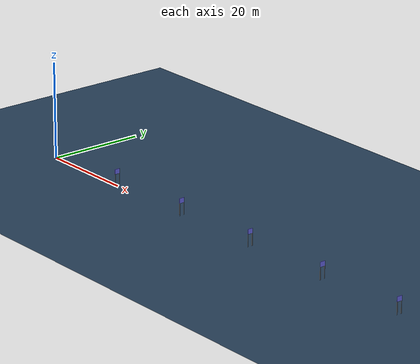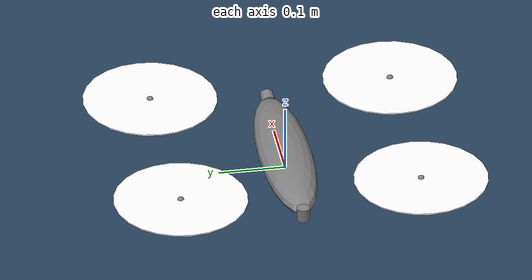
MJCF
<mujoco model="Skydio X2 scene">
  <include file="x2.xml"/>

  <statistic center="0 0 0.1" extent="0.6" meansize=".05"/>

  <visual>
    <headlight diffuse="0.6 0.6 0.6" ambient="0.3 0.3 0.3" specular="0 0 0"/>
    <rgba haze="0.15 0.25 0.35 1"/>
    <global azimuth="-20" elevation="-20" ellipsoidinertia="true"/>
  </visual>

  <asset>
    <texture type="skybox" builtin="gradient" rgb1="0.3 0.5 0.7" rgb2="0 0 0" width="512" height="3072"/>
    <texture type="2d" name="groundplane" builtin="checker" mark="edge" rgb1="0.2 0.3 0.4" rgb2="0.1 0.2 0.3"
      markrgb="0.8 0.8 0.8" width="300" height="300"/>
    <material name="groundplane" texture="groundplane" texuniform="true" texrepeat="5 5" reflectance="0.2"/>
  </asset>

  <worldbody>
    <light pos="0 0 1.5" dir="0 0 -1" directional="true"/>
    <geom name="floor" size="0 0 0.05" type="plane" material="groundplane"/>

     <body name="archa1" pos="20 0 0" euler="0 0 90">-->
      <geom type="box" size="0.05 0.05 1.25" pos="-0.5 0 1.25" rgba="0.6 0.6 0.6 1"/>
      <geom type="box" size="0.05 0.05 1.25" pos="0.5 0 1.25" rgba="0.6 0.6 0.6 1"/>
      <geom type="box" size="0.55 0.05 0.5" pos="0 0 3" rgba="0.4 0.4 0.9 1"/>
    </body>

    <body name="archa2" pos="40 0 0" euler="0 0 90">-->
      <geom type="box" size="0.05 0.05 1.25" pos="-0.5 0 1.25" rgba="0.6 0.6 0.6 1"/>
      <geom type="box" size="0.05 0.05 1.25" pos="0.5 0 1.25" rgba="0.6 0.6 0.6 1"/>
      <geom type="box" size="0.55 0.05 0.5" pos="0 0 3" rgba="0.4 0.4 0.9 1"/>
    </body>

    <body name="archa3" pos="60 0 0" euler="0 0 90">-->
      <geom type="box" size="0.05 0.05 1.25" pos="-0.5 0 1.25" rgba="0.6 0.6 0.6 1"/>
      <geom type="box" size="0.05 0.05 1.25" pos="0.5 0 1.25" rgba="0.6 0.6 0.6 1"/>
      <geom type="box" size="0.55 0.05 0.5" pos="0 0 3" rgba="0.4 0.4 0.9 1"/>
    </body>

    <body name="archa4" pos="80 0 0" euler="0 0 90">-->
      <geom type="box" size="0.05 0.05 1.25" pos="-0.5 0 1.25" rgba="0.6 0.6 0.6 1"/>
      <geom type="box" size="0.05 0.05 1.25" pos="0.5 0 1.25" rgba="0.6 0.6 0.6 1"/>
      <geom type="box" size="0.55 0.05 0.5" pos="0 0 3" rgba="0.4 0.4 0.9 1"/>
    </body>

    <body name="archa5" pos="100 0 0" euler="0 0 90">-->
      <geom type="box" size="0.05 0.05 1.25" pos="-0.5 0 1.25" rgba="0.6 0.6 0.6 1"/>
      <geom type="box" size="0.05 0.05 1.25" pos="0.5 0 1.25" rgba="0.6 0.6 0.6 1"/>
      <geom type="box" size="0.55 0.05 0.5" pos="0 0 3" rgba="0.4 0.4 0.9 1"/>
    </body>

  </worldbody>
</mujoco>

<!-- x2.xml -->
<mujoco model="Skydio X2">
  <compiler autolimits="true" assetdir="assets"/>

  <option timestep="0.01" density="1.225" viscosity="1.8e-5"/>

  <default>
    <default class="x2">
      <geom mass="0"/>
      <motor ctrlrange="-13 13"/>
      <mesh scale="0.01 0.01 0.01"/>
      <default class="visual">
        <geom group="2" type="mesh" contype="0" conaffinity="0"/>
      </default>
      <default class="collision">
        <geom group="3" type="box"/>
        <default class="rotor">
          <geom type="ellipsoid" size=".13 .13 .1" rgba="0.8 0.1 0.1 1"/>
        </default>
      </default>
      <site group="5"/>
    </default>
  </default>

  <asset>
    <material name="invisible" rgba="0 0 0 0"/>
  </asset>

  <worldbody>
    <light name="spotlight" mode="targetbodycom" target="x2" pos="0 -1 0"/>
    <body name="x2" pos="0 0 0">
      <freejoint/>
      <camera name="track" pos="-1 0 .5" xyaxes="0 -1 0 1 0 2" mode="trackcom"/>
      <site name="imu" pos="0 0 .02"/>
      <geom class="collision" size=".06 .027 .02" pos=".04 0 .02" mass="0"/>
      <geom class="collision" size=".06 .027 .02" pos=".04 0 .06" mass="0"/>
      <geom class="collision" size=".05 .027 .02" pos="-.07 0 .065" mass="0"/>
      <geom class="collision" size=".023 .017 .01" pos="-.137 .008 .065" quat="1 0 0 1" mass="0"/>
      <geom name="rotor1" class="rotor" pos="-.14 -.18 .08" mass=".25"/>
      <geom name="rotor2" class="rotor" pos="-.14 .18 .08" mass=".25"/>
      <geom name="rotor3" class="rotor" pos=".14 .18 .08" mass=".25"/>
      <geom name="rotor4" class="rotor" pos=".14 -.18 .08" mass=".25"/>
      <geom size=".16 .04 .02" pos="0 0 0.02" type="ellipsoid" mass="0.325" class="visual"/>
      <site name="straight_lidar_site" pos=".16 .0 .02" size="0.01 0.01" type="cylinder" euler="0 85 0"/>
      <site name="upper_lidar_site" pos="-.16 .0 .02" size="0.01 0.01" type="cylinder" euler="0 0 0"/>
      <site name="thrust1" pos="-.14 -.18 .05"/>
      <geom type="cylinder" size="0.1 0.001" rgba="1 1 1 1" pos="-.14 -.18 .05" mass="0"/>
      <site name="thrust2" pos="-.14 .18 .05"/>
      <geom type="cylinder" size="0.1 0.001" rgba="1 1 1 1" pos="-.14 .18 .05" mass="0"/>
      <site name="thrust3" pos=".14 .18 .05"/>
      <geom type="cylinder" size="0.1 0.001" rgba="1 1 1 1" pos=".14 .18 .05" mass="0"/>
      <site name="thrust4" pos=".14 -.18 .05"/>
      <geom type="cylinder" size="0.1 0.001" rgba="1 1 1 1" pos=".14 -.18 .05" mass="0"/>
    </body>
  </worldbody>

  <actuator>
    <motor class="x2" name="thrust1" site="thrust1" gear="0 0 0.5 0 0 -.0201"/> # передний левый мотор
    <motor class="x2" name="thrust2" site="thrust2" gear="0 0 0.5 0 0  .0201"/> # передний правый мотор
    <motor class="x2" name="thrust3" site="thrust3" gear="0 0 0.5 0 0  .0201"/> # задний правый мотор
    <motor class="x2" name="thrust4" site="thrust4" gear="0 0 0.5 0 0 -.0201"/> # задний левый мотор
  </actuator>

  <sensor>
    <gyro name="body_gyro" site="imu"/>
    <accelerometer name="body_linacc" site="imu"/>
    <framequat name="body_quat" objtype="site" objname="imu"/>
    <rangefinder name="upper_lidar" site="upper_lidar_site" cutoff="2.0"/>
    <rangefinder name="straight_lidar" site="straight_lidar_site" cutoff="5.0"/>
  </sensor>

  <keyframe>
    <key name="hover" qpos="0 0 .3 1 0 0 0" ctrl="3.2495625 3.2495625 3.2495625 3.2495625"/>
  </keyframe>
</mujoco>
